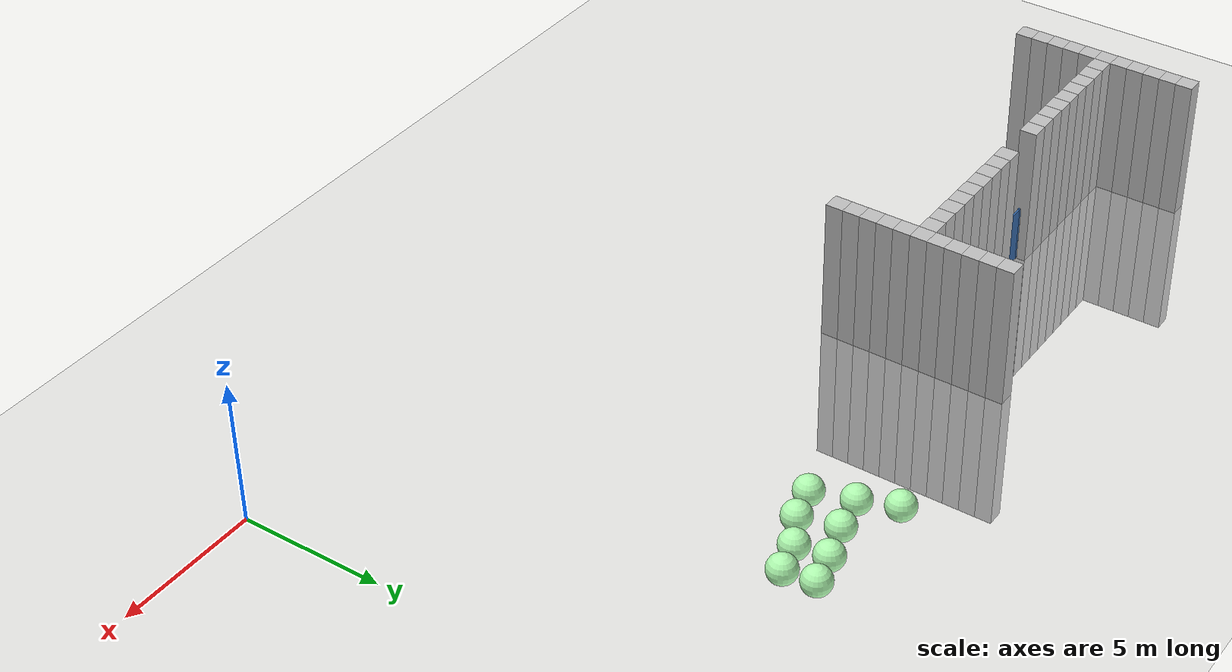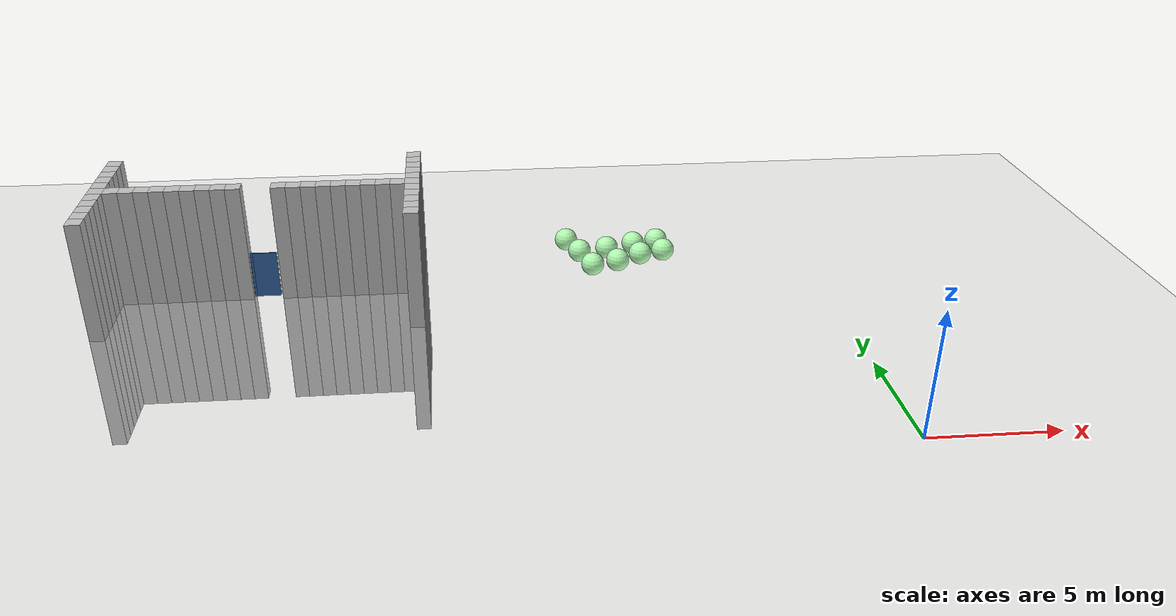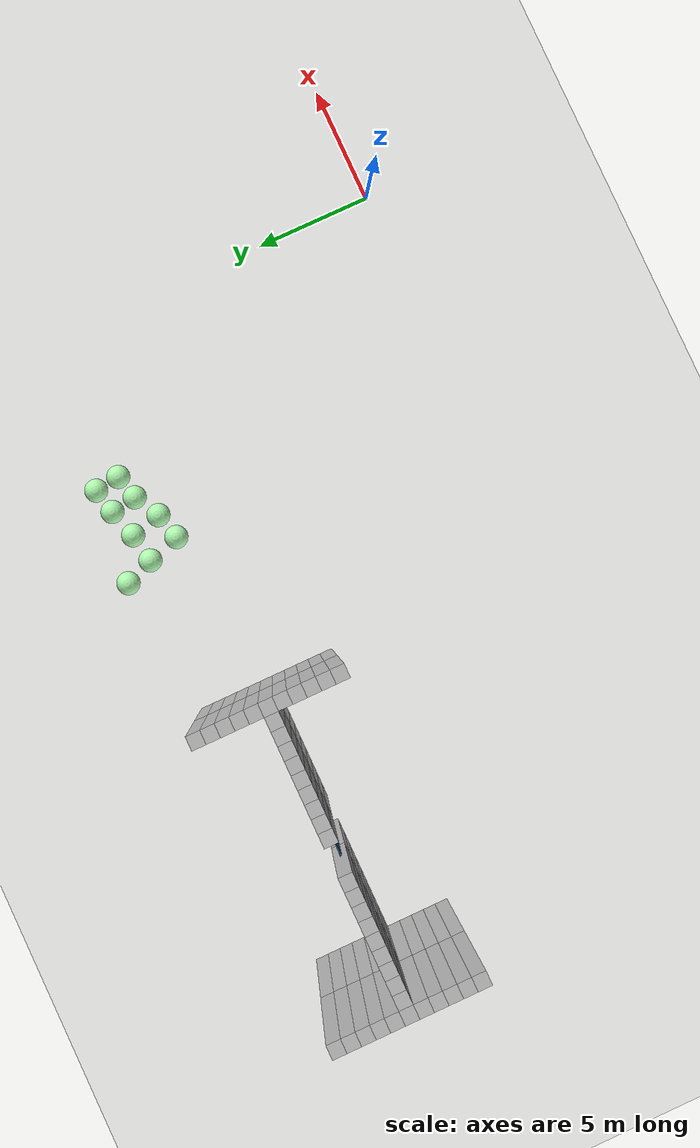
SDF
<sdf version="1.6">
 <world name="default">
  <model name="ground_plane">
   <static>1</static>
   <link name="link">
    <collision name="collision">
     <geometry><plane><normal>0 0 1</normal><size>100 100</size></plane></geometry>
     <surface><friction><ode><mu>100</mu><mu2>50</mu2></ode></friction></surface>
    </collision>
    <visual name="visual">
     <cast_shadows>0</cast_shadows>
     <geometry><plane><normal>0 0 1</normal><size>100 100</size></plane></geometry>
     <material>
      <script><uri>file://media/materials/scripts/gazebo.material</uri><name>Gazebo/Grey</name></script>
     </material>
    </visual>
   </link>
  </model>
  <model name="unit_cylinder_349">
   <static>1</static>
   <pose>-30 9.6 0 0 -0 0</pose>
   <link name="link">
    <inertial>
     <mass>1</mass>
     <inertia><ixx>0.145833</ixx><ixy>0</ixy><ixz>0</ixz><iyy>0.145833</iyy><iyz>0</iyz><izz>0.125</izz></inertia>
    </inertial>
    <collision name="collision"><geometry><box><size>0.6 0.6 10</size></box></geometry></collision>
    <visual name="visual">
     <geometry><box><size>0.6 0.6 10</size></box></geometry>
     <material><ambient>0.753 0.753 0.753 1</ambient><diffuse>0.753 0.753 0.753 1</diffuse></material>
     <material>
      <script><name>Gazebo/Grey</name><uri>file://media/materials/scripts/gazebo.material</uri></script>
     </material>
    </visual>
   </link>
  </model>
  <model name="unit_cylinder_350">
   <static>1</static>
   <pose>-30 10.2 0 0 -0 0</pose>
   <link name="link">
    <inertial>
     <mass>1</mass>
     <inertia><ixx>0.145833</ixx><ixy>0</ixy><ixz>0</ixz><iyy>0.145833</iyy><iyz>0</iyz><izz>0.125</izz></inertia>
    </inertial>
    <collision name="collision"><geometry><box><size>0.6 0.6 10</size></box></geometry></collision>
    <visual name="visual">
     <geometry><box><size>0.6 0.6 10</size></box></geometry>
     <material><ambient>0.753 0.753 0.753 1</ambient><diffuse>0.753 0.753 0.753 1</diffuse></material>
     <material>
      <script><name>Gazebo/Grey</name><uri>file://media/materials/scripts/gazebo.material</uri></script>
     </material>
    </visual>
   </link>
  </model>
  <model name="unit_cylinder_351">
   <static>1</static>
   <pose>-30 10.8 0 0 -0 0</pose>
   <link name="link">
    <inertial>
     <mass>1</mass>
     <inertia><ixx>0.145833</ixx><ixy>0</ixy><ixz>0</ixz><iyy>0.145833</iyy><iyz>0</iyz><izz>0.125</izz></inertia>
    </inertial>
    <collision name="collision"><geometry><box><size>0.6 0.6 10</size></box></geometry></collision>
    <visual name="visual">
     <geometry><box><size>0.6 0.6 10</size></box></geometry>
     <material><ambient>0.753 0.753 0.753 1</ambient><diffuse>0.753 0.753 0.753 1</diffuse></material>
     <material>
      <script><name>Gazebo/Grey</name><uri>file://media/materials/scripts/gazebo.material</uri></script>
     </material>
    </visual>
   </link>
  </model>
  <model name="unit_cylinder_352">
   <static>1</static>
   <pose>-30 11.4 0 0 -0 0</pose>
   <link name="link">
    <inertial>
     <mass>1</mass>
     <inertia><ixx>0.145833</ixx><ixy>0</ixy><ixz>0</ixz><iyy>0.145833</iyy><iyz>0</iyz><izz>0.125</izz></inertia>
    </inertial>
    <collision name="collision"><geometry><box><size>0.6 0.6 10</size></box></geometry></collision>
    <visual name="visual">
     <geometry><box><size>0.6 0.6 10</size></box></geometry>
     <material><ambient>0.753 0.753 0.753 1</ambient><diffuse>0.753 0.753 0.753 1</diffuse></material>
     <material>
      <script><name>Gazebo/Grey</name><uri>file://media/materials/scripts/gazebo.material</uri></script>
     </material>
    </visual>
   </link>
  </model>
  <model name="unit_cylinder_353">
   <static>1</static>
   <pose>-30 12 0 0 -0 0</pose>
   <link name="link">
    <inertial>
     <mass>1</mass>
     <inertia><ixx>0.145833</ixx><ixy>0</ixy><ixz>0</ixz><iyy>0.145833</iyy><iyz>0</iyz><izz>0.125</izz></inertia>
    </inertial>
    <collision name="collision"><geometry><box><size>0.6 0.6 10</size></box></geometry></collision>
    <visual name="visual">
     <geometry><box><size>0.6 0.6 10</size></box></geometry>
     <material><ambient>0.753 0.753 0.753 1</ambient><diffuse>0.753 0.753 0.753 1</diffuse></material>
     <material>
      <script><name>Gazebo/Grey</name><uri>file://media/materials/scripts/gazebo.material</uri></script>
     </material>
    </visual>
   </link>
  </model>
  <model name="unit_cylinder_354">
   <static>1</static>
   <pose>-30 12.6 0 0 -0 0</pose>
   <link name="link">
    <inertial>
     <mass>1</mass>
     <inertia><ixx>0.145833</ixx><ixy>0</ixy><ixz>0</ixz><iyy>0.145833</iyy><iyz>0</iyz><izz>0.125</izz></inertia>
    </inertial>
    <collision name="collision"><geometry><box><size>0.6 0.6 10</size></box></geometry></collision>
    <visual name="visual">
     <geometry><box><size>0.6 0.6 10</size></box></geometry>
     <material><ambient>0.753 0.753 0.753 1</ambient><diffuse>0.753 0.753 0.753 1</diffuse></material>
     <material>
      <script><name>Gazebo/Grey</name><uri>file://media/materials/scripts/gazebo.material</uri></script>
     </material>
    </visual>
   </link>
  </model>
  <model name="unit_cylinder_355">
   <static>1</static>
   <pose>-30 13.2 0 0 -0 0</pose>
   <link name="link">
    <inertial>
     <mass>1</mass>
     <inertia><ixx>0.145833</ixx><ixy>0</ixy><ixz>0</ixz><iyy>0.145833</iyy><iyz>0</iyz><izz>0.125</izz></inertia>
    </inertial>
    <collision name="collision"><geometry><box><size>0.6 0.6 10</size></box></geometry></collision>
    <visual name="visual">
     <geometry><box><size>0.6 0.6 10</size></box></geometry>
     <material><ambient>0.753 0.753 0.753 1</ambient><diffuse>0.753 0.753 0.753 1</diffuse></material>
     <material>
      <script><name>Gazebo/Grey</name><uri>file://media/materials/scripts/gazebo.material</uri></script>
     </material>
    </visual>
   </link>
  </model>
  <model name="unit_cylinder_356">
   <static>1</static>
   <pose>-30 13.8 0 0 -0 0</pose>
   <link name="link">
    <inertial>
     <mass>1</mass>
     <inertia><ixx>0.145833</ixx><ixy>0</ixy><ixz>0</ixz><iyy>0.145833</iyy><iyz>0</iyz><izz>0.125</izz></inertia>
    </inertial>
    <collision name="collision"><geometry><box><size>0.6 0.6 10</size></box></geometry></collision>
    <visual name="visual">
     <geometry><box><size>0.6 0.6 10</size></box></geometry>
     <material><ambient>0.753 0.753 0.753 1</ambient><diffuse>0.753 0.753 0.753 1</diffuse></material>
     <material>
      <script><name>Gazebo/Grey</name><uri>file://media/materials/scripts/gazebo.material</uri></script>
     </material>
    </visual>
   </link>
  </model>
  <model name="unit_cylinder_357">
   <static>1</static>
   <pose>-30 14.4 0 0 -0 0</pose>
   <link name="link">
    <inertial>
     <mass>1</mass>
     <inertia><ixx>0.145833</ixx><ixy>0</ixy><ixz>0</ixz><iyy>0.145833</iyy><iyz>0</iyz><izz>0.125</izz></inertia>
    </inertial>
    <collision name="collision"><geometry><box><size>0.6 0.6 10</size></box></geometry></collision>
    <visual name="visual">
     <geometry><box><size>0.6 0.6 10</size></box></geometry>
     <material><ambient>0.753 0.753 0.753 1</ambient><diffuse>0.753 0.753 0.753 1</diffuse></material>
     <material>
      <script><name>Gazebo/Grey</name><uri>file://media/materials/scripts/gazebo.material</uri></script>
     </material>
    </visual>
   </link>
  </model>
  <model name="unit_cylinder_358">
   <static>1</static>
   <pose>-30 15 0 0 -0 0</pose>
   <link name="link">
    <inertial>
     <mass>1</mass>
     <inertia><ixx>0.145833</ixx><ixy>0</ixy><ixz>0</ixz><iyy>0.145833</iyy><iyz>0</iyz><izz>0.125</izz></inertia>
    </inertial>
    <collision name="collision"><geometry><box><size>0.6 0.6 10</size></box></geometry></collision>
    <visual name="visual">
     <geometry><box><size>0.6 0.6 10</size></box></geometry>
     <material><ambient>0.753 0.753 0.753 1</ambient><diffuse>0.753 0.753 0.753 1</diffuse></material>
     <material>
      <script><name>Gazebo/Grey</name><uri>file://media/materials/scripts/gazebo.material</uri></script>
     </material>
    </visual>
   </link>
  </model>
  <model name="unit_cylinder_359">
   <static>1</static>
   <pose>-30 15.6 0 0 -0 0</pose>
   <link name="link">
    <inertial>
     <mass>1</mass>
     <inertia><ixx>0.145833</ixx><ixy>0</ixy><ixz>0</ixz><iyy>0.145833</iyy><iyz>0</iyz><izz>0.125</izz></inertia>
    </inertial>
    <collision name="collision"><geometry><box><size>0.6 0.6 10</size></box></geometry></collision>
    <visual name="visual">
     <geometry><box><size>0.6 0.6 10</size></box></geometry>
     <material><ambient>0.753 0.753 0.753 1</ambient><diffuse>0.753 0.753 0.753 1</diffuse></material>
     <material>
      <script><name>Gazebo/Grey</name><uri>file://media/materials/scripts/gazebo.material</uri></script>
     </material>
    </visual>
   </link>
  </model>
  <model name="unit_cylinder_398">
   <static>1</static>
   <pose>-29.4 12.6 0 0 -0 0</pose>
   <link name="link">
    <inertial>
     <mass>1</mass>
     <inertia><ixx>0.145833</ixx><ixy>0</ixy><ixz>0</ixz><iyy>0.145833</iyy><iyz>0</iyz><izz>0.125</izz></inertia>
    </inertial>
    <collision name="collision"><geometry><box><size>0.6 0.6 10</size></box></geometry></collision>
    <visual name="visual">
     <geometry><box><size>0.6 0.6 10</size></box></geometry>
     <material><ambient>0.753 0.753 0.753 1</ambient><diffuse>0.753 0.753 0.753 1</diffuse></material>
     <material>
      <script><name>Gazebo/Grey</name><uri>file://media/materials/scripts/gazebo.material</uri></script>
     </material>
    </visual>
   </link>
  </model>
  <model name="unit_cylinder_402">
   <static>1</static>
   <pose>-28.8 12.6 0 0 -0 0</pose>
   <link name="link">
    <inertial>
     <mass>1</mass>
     <inertia><ixx>0.145833</ixx><ixy>0</ixy><ixz>0</ixz><iyy>0.145833</iyy><iyz>0</iyz><izz>0.125</izz></inertia>
    </inertial>
    <collision name="collision"><geometry><box><size>0.6 0.6 10</size></box></geometry></collision>
    <visual name="visual">
     <geometry><box><size>0.6 0.6 10</size></box></geometry>
     <material><ambient>0.753 0.753 0.753 1</ambient><diffuse>0.753 0.753 0.753 1</diffuse></material>
     <material>
      <script><name>Gazebo/Grey</name><uri>file://media/materials/scripts/gazebo.material</uri></script>
     </material>
    </visual>
   </link>
  </model>
  <model name="unit_cylinder_406">
   <static>1</static>
   <pose>-28.2 12.6 0 0 -0 0</pose>
   <link name="link">
    <inertial>
     <mass>1</mass>
     <inertia><ixx>0.145833</ixx><ixy>0</ixy><ixz>0</ixz><iyy>0.145833</iyy><iyz>0</iyz><izz>0.125</izz></inertia>
    </inertial>
    <collision name="collision"><geometry><box><size>0.6 0.6 10</size></box></geometry></collision>
    <visual name="visual">
     <geometry><box><size>0.6 0.6 10</size></box></geometry>
     <material><ambient>0.753 0.753 0.753 1</ambient><diffuse>0.753 0.753 0.753 1</diffuse></material>
     <material>
      <script><name>Gazebo/Grey</name><uri>file://media/materials/scripts/gazebo.material</uri></script>
     </material>
    </visual>
   </link>
  </model>
  <model name="unit_cylinder_410">
   <static>1</static>
   <pose>-27.6 12.6 0 0 -0 0</pose>
   <link name="link">
    <inertial>
     <mass>1</mass>
     <inertia><ixx>0.145833</ixx><ixy>0</ixy><ixz>0</ixz><iyy>0.145833</iyy><iyz>0</iyz><izz>0.125</izz></inertia>
    </inertial>
    <collision name="collision"><geometry><box><size>0.6 0.6 10</size></box></geometry></collision>
    <visual name="visual">
     <geometry><box><size>0.6 0.6 10</size></box></geometry>
     <material><ambient>0.753 0.753 0.753 1</ambient><diffuse>0.753 0.753 0.753 1</diffuse></material>
     <material>
      <script><name>Gazebo/Grey</name><uri>file://media/materials/scripts/gazebo.material</uri></script>
     </material>
    </visual>
   </link>
  </model>
  <model name="unit_cylinder_414">
   <static>1</static>
   <pose>-27 12.6 0 0 -0 0</pose>
   <link name="link">
    <inertial>
     <mass>1</mass>
     <inertia><ixx>0.145833</ixx><ixy>0</ixy><ixz>0</ixz><iyy>0.145833</iyy><iyz>0</iyz><izz>0.125</izz></inertia>
    </inertial>
    <collision name="collision"><geometry><box><size>0.6 0.6 10</size></box></geometry></collision>
    <visual name="visual">
     <geometry><box><size>0.6 0.6 10</size></box></geometry>
     <material><ambient>0.753 0.753 0.753 1</ambient><diffuse>0.753 0.753 0.753 1</diffuse></material>
     <material>
      <script><name>Gazebo/Grey</name><uri>file://media/materials/scripts/gazebo.material</uri></script>
     </material>
    </visual>
   </link>
  </model>
  <model name="unit_cylinder_418">
   <static>1</static>
   <pose>-26.4 12.6 0 0 -0 0</pose>
   <link name="link">
    <inertial>
     <mass>1</mass>
     <inertia><ixx>0.145833</ixx><ixy>0</ixy><ixz>0</ixz><iyy>0.145833</iyy><iyz>0</iyz><izz>0.125</izz></inertia>
    </inertial>
    <collision name="collision"><geometry><box><size>0.6 0.6 10</size></box></geometry></collision>
    <visual name="visual">
     <geometry><box><size>0.6 0.6 10</size></box></geometry>
     <material><ambient>0.753 0.753 0.753 1</ambient><diffuse>0.753 0.753 0.753 1</diffuse></material>
     <material>
      <script><name>Gazebo/Grey</name><uri>file://media/materials/scripts/gazebo.material</uri></script>
     </material>
    </visual>
   </link>
  </model>
  <model name="unit_cylinder_422">
   <static>1</static>
   <pose>-25.8 12.6 0 0 -0 0</pose>
   <link name="link">
    <inertial>
     <mass>1</mass>
     <inertia><ixx>0.145833</ixx><ixy>0</ixy><ixz>0</ixz><iyy>0.145833</iyy><iyz>0</iyz><izz>0.125</izz></inertia>
    </inertial>
    <collision name="collision"><geometry><box><size>0.6 0.6 10</size></box></geometry></collision>
    <visual name="visual">
     <geometry><box><size>0.6 0.6 10</size></box></geometry>
     <material><ambient>0.753 0.753 0.753 1</ambient><diffuse>0.753 0.753 0.753 1</diffuse></material>
     <material>
      <script><name>Gazebo/Grey</name><uri>file://media/materials/scripts/gazebo.material</uri></script>
     </material>
    </visual>
   </link>
  </model>
  <model name="unit_cylinder_426">
   <static>1</static>
   <pose>-25.2 12.6 0 0 -0 0</pose>
   <link name="link">
    <inertial>
     <mass>1</mass>
     <inertia><ixx>0.145833</ixx><ixy>0</ixy><ixz>0</ixz><iyy>0.145833</iyy><iyz>0</iyz><izz>0.125</izz></inertia>
    </inertial>
    <collision name="collision"><geometry><box><size>0.6 0.6 10</size></box></geometry></collision>
    <visual name="visual">
     <geometry><box><size>0.6 0.6 10</size></box></geometry>
     <material><ambient>0.753 0.753 0.753 1</ambient><diffuse>0.753 0.753 0.753 1</diffuse></material>
     <material>
      <script><name>Gazebo/Grey</name><uri>file://media/materials/scripts/gazebo.material</uri></script>
     </material>
    </visual>
   </link>
  </model>
  <model name="unit_cylinder_430">
   <static>1</static>
   <pose>-24.6 12.6 0 0 -0 0</pose>
   <link name="link">
    <inertial>
     <mass>1</mass>
     <inertia><ixx>0.145833</ixx><ixy>0</ixy><ixz>0</ixz><iyy>0.145833</iyy><iyz>0</iyz><izz>0.125</izz></inertia>
    </inertial>
    <collision name="collision"><geometry><box><size>0.6 0.6 10</size></box></geometry></collision>
    <visual name="visual">
     <geometry><box><size>0.6 0.6 10</size></box></geometry>
     <material><ambient>0.753 0.753 0.753 1</ambient><diffuse>0.753 0.753 0.753 1</diffuse></material>
     <material>
      <script><name>Gazebo/Grey</name><uri>file://media/materials/scripts/gazebo.material</uri></script>
     </material>
    </visual>
   </link>
  </model>
  <model name="unit_cylinder_442">
   <static>1</static>
   <pose>-22.8 12.6 0 0 -0 0</pose>
   <link name="link">
    <inertial>
     <mass>1</mass>
     <inertia><ixx>0.145833</ixx><ixy>0</ixy><ixz>0</ixz><iyy>0.145833</iyy><iyz>0</iyz><izz>0.125</izz></inertia>
    </inertial>
    <collision name="collision"><geometry><box><size>0.6 0.6 10</size></box></geometry></collision>
    <visual name="visual">
     <geometry><box><size>0.6 0.6 10</size></box></geometry>
     <material><ambient>0.753 0.753 0.753 1</ambient><diffuse>0.753 0.753 0.753 1</diffuse></material>
     <material>
      <script><name>Gazebo/Grey</name><uri>file://media/materials/scripts/gazebo.material</uri></script>
     </material>
    </visual>
   </link>
  </model>
  <model name="unit_cylinder_446">
   <static>1</static>
   <pose>-22.2 12.6 0 0 -0 0</pose>
   <link name="link">
    <inertial>
     <mass>1</mass>
     <inertia><ixx>0.145833</ixx><ixy>0</ixy><ixz>0</ixz><iyy>0.145833</iyy><iyz>0</iyz><izz>0.125</izz></inertia>
    </inertial>
    <collision name="collision"><geometry><box><size>0.6 0.6 10</size></box></geometry></collision>
    <visual name="visual">
     <geometry><box><size>0.6 0.6 10</size></box></geometry>
     <material><ambient>0.753 0.753 0.753 1</ambient><diffuse>0.753 0.753 0.753 1</diffuse></material>
     <material>
      <script><name>Gazebo/Grey</name><uri>file://media/materials/scripts/gazebo.material</uri></script>
     </material>
    </visual>
   </link>
  </model>
  <model name="unit_cylinder_450">
   <static>1</static>
   <pose>-21.6 12.6 0 0 -0 0</pose>
   <link name="link">
    <inertial>
     <mass>1</mass>
     <inertia><ixx>0.145833</ixx><ixy>0</ixy><ixz>0</ixz><iyy>0.145833</iyy><iyz>0</iyz><izz>0.125</izz></inertia>
    </inertial>
    <collision name="collision"><geometry><box><size>0.6 0.6 10</size></box></geometry></collision>
    <visual name="visual">
     <geometry><box><size>0.6 0.6 10</size></box></geometry>
     <material><ambient>0.753 0.753 0.753 1</ambient><diffuse>0.753 0.753 0.753 1</diffuse></material>
     <material>
      <script><name>Gazebo/Grey</name><uri>file://media/materials/scripts/gazebo.material</uri></script>
     </material>
    </visual>
   </link>
  </model>
  <model name="unit_cylinder_454">
   <static>1</static>
   <pose>-21 12.6 0 0 -0 0</pose>
   <link name="link">
    <inertial>
     <mass>1</mass>
     <inertia><ixx>0.145833</ixx><ixy>0</ixy><ixz>0</ixz><iyy>0.145833</iyy><iyz>0</iyz><izz>0.125</izz></inertia>
    </inertial>
    <collision name="collision"><geometry><box><size>0.6 0.6 10</size></box></geometry></collision>
    <visual name="visual">
     <geometry><box><size>0.6 0.6 10</size></box></geometry>
     <material><ambient>0.753 0.753 0.753 1</ambient><diffuse>0.753 0.753 0.753 1</diffuse></material>
     <material>
      <script><name>Gazebo/Grey</name><uri>file://media/materials/scripts/gazebo.material</uri></script>
     </material>
    </visual>
   </link>
  </model>
  <model name="unit_cylinder_458">
   <static>1</static>
   <pose>-20.4 12.6 0 0 -0 0</pose>
   <link name="link">
    <inertial>
     <mass>1</mass>
     <inertia><ixx>0.145833</ixx><ixy>0</ixy><ixz>0</ixz><iyy>0.145833</iyy><iyz>0</iyz><izz>0.125</izz></inertia>
    </inertial>
    <collision name="collision"><geometry><box><size>0.6 0.6 10</size></box></geometry></collision>
    <visual name="visual">
     <geometry><box><size>0.6 0.6 10</size></box></geometry>
     <material><ambient>0.753 0.753 0.753 1</ambient><diffuse>0.753 0.753 0.753 1</diffuse></material>
     <material>
      <script><name>Gazebo/Grey</name><uri>file://media/materials/scripts/gazebo.material</uri></script>
     </material>
    </visual>
   </link>
  </model>
  <model name="unit_cylinder_462">
   <static>1</static>
   <pose>-19.8 12.6 0 0 -0 0</pose>
   <link name="link">
    <inertial>
     <mass>1</mass>
     <inertia><ixx>0.145833</ixx><ixy>0</ixy><ixz>0</ixz><iyy>0.145833</iyy><iyz>0</iyz><izz>0.125</izz></inertia>
    </inertial>
    <collision name="collision"><geometry><box><size>0.6 0.6 10</size></box></geometry></collision>
    <visual name="visual">
     <geometry><box><size>0.6 0.6 10</size></box></geometry>
     <material><ambient>0.753 0.753 0.753 1</ambient><diffuse>0.753 0.753 0.753 1</diffuse></material>
     <material>
      <script><name>Gazebo/Grey</name><uri>file://media/materials/scripts/gazebo.material</uri></script>
     </material>
    </visual>
   </link>
  </model>
  <model name="unit_cylinder_466">
   <static>1</static>
   <pose>-19.2 12.6 0 0 -0 0</pose>
   <link name="link">
    <inertial>
     <mass>1</mass>
     <inertia><ixx>0.145833</ixx><ixy>0</ixy><ixz>0</ixz><iyy>0.145833</iyy><iyz>0</iyz><izz>0.125</izz></inertia>
    </inertial>
    <collision name="collision"><geometry><box><size>0.6 0.6 10</size></box></geometry></collision>
    <visual name="visual">
     <geometry><box><size>0.6 0.6 10</size></box></geometry>
     <material><ambient>0.753 0.753 0.753 1</ambient><diffuse>0.753 0.753 0.753 1</diffuse></material>
     <material>
      <script><name>Gazebo/Grey</name><uri>file://media/materials/scripts/gazebo.material</uri></script>
     </material>
    </visual>
   </link>
  </model>
  <model name="unit_cylinder_470">
   <static>1</static>
   <pose>-18.6 12.6 0 0 -0 0</pose>
   <link name="link">
    <inertial>
     <mass>1</mass>
     <inertia><ixx>0.145833</ixx><ixy>0</ixy><ixz>0</ixz><iyy>0.145833</iyy><iyz>0</iyz><izz>0.125</izz></inertia>
    </inertial>
    <collision name="collision"><geometry><box><size>0.6 0.6 10</size></box></geometry></collision>
    <visual name="visual">
     <geometry><box><size>0.6 0.6 10</size></box></geometry>
     <material><ambient>0.753 0.753 0.753 1</ambient><diffuse>0.753 0.753 0.753 1</diffuse></material>
     <material>
      <script><name>Gazebo/Grey</name><uri>file://media/materials/scripts/gazebo.material</uri></script>
     </material>
    </visual>
   </link>
  </model>
  <model name="unit_cylinder_474">
   <static>1</static>
   <pose>-18 12.6 0 0 -0 0</pose>
   <link name="link">
    <inertial>
     <mass>1</mass>
     <inertia><ixx>0.145833</ixx><ixy>0</ixy><ixz>0</ixz><iyy>0.145833</iyy><iyz>0</iyz><izz>0.125</izz></inertia>
    </inertial>
    <collision name="collision"><geometry><box><size>0.6 0.6 10</size></box></geometry></collision>
    <visual name="visual">
     <geometry><box><size>0.6 0.6 10</size></box></geometry>
     <material><ambient>0.753 0.753 0.753 1</ambient><diffuse>0.753 0.753 0.753 1</diffuse></material>
     <material>
      <script><name>Gazebo/Grey</name><uri>file://media/materials/scripts/gazebo.material</uri></script>
     </material>
    </visual>
   </link>
  </model>
  <model name="unit_cylinder_493">
   <static>1</static>
   <pose>-17.4 9.6 0 0 -0 0</pose>
   <link name="link">
    <inertial>
     <mass>1</mass>
     <inertia><ixx>0.145833</ixx><ixy>0</ixy><ixz>0</ixz><iyy>0.145833</iyy><iyz>0</iyz><izz>0.125</izz></inertia>
    </inertial>
    <collision name="collision"><geometry><box><size>0.6 0.6 10</size></box></geometry></collision>
    <visual name="visual">
     <geometry><box><size>0.6 0.6 10</size></box></geometry>
     <material><ambient>0.753 0.753 0.753 1</ambient><diffuse>0.753 0.753 0.753 1</diffuse></material>
     <material>
      <script><name>Gazebo/Grey</name><uri>file://media/materials/scripts/gazebo.material</uri></script>
     </material>
    </visual>
   </link>
  </model>
  <model name="unit_cylinder_494">
   <static>1</static>
   <pose>-17.4 10.2 0 0 -0 0</pose>
   <link name="link">
    <inertial>
     <mass>1</mass>
     <inertia><ixx>0.145833</ixx><ixy>0</ixy><ixz>0</ixz><iyy>0.145833</iyy><iyz>0</iyz><izz>0.125</izz></inertia>
    </inertial>
    <collision name="collision"><geometry><box><size>0.6 0.6 10</size></box></geometry></collision>
    <visual name="visual">
     <geometry><box><size>0.6 0.6 10</size></box></geometry>
     <material><ambient>0.753 0.753 0.753 1</ambient><diffuse>0.753 0.753 0.753 1</diffuse></material>
     <material>
      <script><name>Gazebo/Grey</name><uri>file://media/materials/scripts/gazebo.material</uri></script>
     </material>
    </visual>
   </link>
  </model>
  <model name="unit_cylinder_495">
   <static>1</static>
   <pose>-17.4 10.8 0 0 -0 0</pose>
   <link name="link">
    <inertial>
     <mass>1</mass>
     <inertia><ixx>0.145833</ixx><ixy>0</ixy><ixz>0</ixz><iyy>0.145833</iyy><iyz>0</iyz><izz>0.125</izz></inertia>
    </inertial>
    <collision name="collision"><geometry><box><size>0.6 0.6 10</size></box></geometry></collision>
    <visual name="visual">
     <geometry><box><size>0.6 0.6 10</size></box></geometry>
     <material><ambient>0.753 0.753 0.753 1</ambient><diffuse>0.753 0.753 0.753 1</diffuse></material>
     <material>
      <script><name>Gazebo/Grey</name><uri>file://media/materials/scripts/gazebo.material</uri></script>
     </material>
    </visual>
   </link>
  </model>
  <model name="unit_cylinder_496">
   <static>1</static>
   <pose>-17.4 11.4 0 0 -0 0</pose>
   <link name="link">
    <inertial>
     <mass>1</mass>
     <inertia><ixx>0.145833</ixx><ixy>0</ixy><ixz>0</ixz><iyy>0.145833</iyy><iyz>0</iyz><izz>0.125</izz></inertia>
    </inertial>
    <collision name="collision"><geometry><box><size>0.6 0.6 10</size></box></geometry></collision>
    <visual name="visual">
     <geometry><box><size>0.6 0.6 10</size></box></geometry>
     <material><ambient>0.753 0.753 0.753 1</ambient><diffuse>0.753 0.753 0.753 1</diffuse></material>
     <material>
      <script><name>Gazebo/Grey</name><uri>file://media/materials/scripts/gazebo.material</uri></script>
     </material>
    </visual>
   </link>
  </model>
  <model name="unit_cylinder_497">
   <static>1</static>
   <pose>-17.4 12 0 0 -0 0</pose>
   <link name="link">
    <inertial>
     <mass>1</mass>
     <inertia><ixx>0.145833</ixx><ixy>0</ixy><ixz>0</ixz><iyy>0.145833</iyy><iyz>0</iyz><izz>0.125</izz></inertia>
    </inertial>
    <collision name="collision"><geometry><box><size>0.6 0.6 10</size></box></geometry></collision>
    <visual name="visual">
     <geometry><box><size>0.6 0.6 10</size></box></geometry>
     <material><ambient>0.753 0.753 0.753 1</ambient><diffuse>0.753 0.753 0.753 1</diffuse></material>
     <material>
      <script><name>Gazebo/Grey</name><uri>file://media/materials/scripts/gazebo.material</uri></script>
     </material>
    </visual>
   </link>
  </model>
  <model name="unit_cylinder_498">
   <static>1</static>
   <pose>-17.4 12.6 0 0 -0 0</pose>
   <link name="link">
    <inertial>
     <mass>1</mass>
     <inertia><ixx>0.145833</ixx><ixy>0</ixy><ixz>0</ixz><iyy>0.145833</iyy><iyz>0</iyz><izz>0.125</izz></inertia>
    </inertial>
    <collision name="collision"><geometry><box><size>0.6 0.6 10</size></box></geometry></collision>
    <visual name="visual">
     <geometry><box><size>0.6 0.6 10</size></box></geometry>
     <material><ambient>0.753 0.753 0.753 1</ambient><diffuse>0.753 0.753 0.753 1</diffuse></material>
     <material>
      <script><name>Gazebo/Grey</name><uri>file://media/materials/scripts/gazebo.material</uri></script>
     </material>
    </visual>
   </link>
  </model>
  <model name="unit_cylinder_499">
   <static>1</static>
   <pose>-17.4 13.2 0 0 -0 0</pose>
   <link name="link">
    <inertial>
     <mass>1</mass>
     <inertia><ixx>0.145833</ixx><ixy>0</ixy><ixz>0</ixz><iyy>0.145833</iyy><iyz>0</iyz><izz>0.125</izz></inertia>
    </inertial>
    <collision name="collision"><geometry><box><size>0.6 0.6 10</size></box></geometry></collision>
    <visual name="visual">
     <geometry><box><size>0.6 0.6 10</size></box></geometry>
     <material><ambient>0.753 0.753 0.753 1</ambient><diffuse>0.753 0.753 0.753 1</diffuse></material>
     <material>
      <script><name>Gazebo/Grey</name><uri>file://media/materials/scripts/gazebo.material</uri></script>
     </material>
    </visual>
   </link>
  </model>
  <model name="unit_cylinder_500">
   <static>1</static>
   <pose>-17.4 13.8 0 0 -0 0</pose>
   <link name="link">
    <inertial>
     <mass>1</mass>
     <inertia><ixx>0.145833</ixx><ixy>0</ixy><ixz>0</ixz><iyy>0.145833</iyy><iyz>0</iyz><izz>0.125</izz></inertia>
    </inertial>
    <collision name="collision"><geometry><box><size>0.6 0.6 10</size></box></geometry></collision>
    <visual name="visual">
     <geometry><box><size>0.6 0.6 10</size></box></geometry>
     <material><ambient>0.753 0.753 0.753 1</ambient><diffuse>0.753 0.753 0.753 1</diffuse></material>
     <material>
      <script><name>Gazebo/Grey</name><uri>file://media/materials/scripts/gazebo.material</uri></script>
     </material>
    </visual>
   </link>
  </model>
  <model name="unit_cylinder_501">
   <static>1</static>
   <pose>-17.4 14.4 0 0 -0 0</pose>
   <link name="link">
    <inertial>
     <mass>1</mass>
     <inertia><ixx>0.145833</ixx><ixy>0</ixy><ixz>0</ixz><iyy>0.145833</iyy><iyz>0</iyz><izz>0.125</izz></inertia>
    </inertial>
    <collision name="collision"><geometry><box><size>0.6 0.6 10</size></box></geometry></collision>
    <visual name="visual">
     <geometry><box><size>0.6 0.6 10</size></box></geometry>
     <material><ambient>0.753 0.753 0.753 1</ambient><diffuse>0.753 0.753 0.753 1</diffuse></material>
     <material>
      <script><name>Gazebo/Grey</name><uri>file://media/materials/scripts/gazebo.material</uri></script>
     </material>
    </visual>
   </link>
  </model>
  <model name="unit_cylinder_502">
   <static>1</static>
   <pose>-17.4 15 0 0 -0 0</pose>
   <link name="link">
    <inertial>
     <mass>1</mass>
     <inertia><ixx>0.145833</ixx><ixy>0</ixy><ixz>0</ixz><iyy>0.145833</iyy><iyz>0</iyz><izz>0.125</izz></inertia>
    </inertial>
    <collision name="collision"><geometry><box><size>0.6 0.6 10</size></box></geometry></collision>
    <visual name="visual">
     <geometry><box><size>0.6 0.6 10</size></box></geometry>
     <material><ambient>0.753 0.753 0.753 1</ambient><diffuse>0.753 0.753 0.753 1</diffuse></material>
     <material>
      <script><name>Gazebo/Grey</name><uri>file://media/materials/scripts/gazebo.material</uri></script>
     </material>
    </visual>
   </link>
  </model>
  <model name="unit_cylinder_503">
   <static>1</static>
   <pose>-17.4 15.6 0 0 -0 0</pose>
   <link name="link">
    <inertial>
     <mass>1</mass>
     <inertia><ixx>0.145833</ixx><ixy>0</ixy><ixz>0</ixz><iyy>0.145833</iyy><iyz>0</iyz><izz>0.125</izz></inertia>
    </inertial>
    <collision name="collision"><geometry><box><size>0.6 0.6 10</size></box></geometry></collision>
    <visual name="visual">
     <geometry><box><size>0.6 0.6 10</size></box></geometry>
     <material><ambient>0.753 0.753 0.753 1</ambient><diffuse>0.753 0.753 0.753 1</diffuse></material>
     <material>
      <script><name>Gazebo/Grey</name><uri>file://media/materials/scripts/gazebo.material</uri></script>
     </material>
    </visual>
   </link>
  </model>
  <model name="hinge_door_0">
   <link name="link_0">
    <inertial>
     <mass>0.11</mass>
     <inertia>
      <ixx>0.0366896</ixx>
      <ixy>0</ixy>
      <ixz>0</ixz>
      <iyy>0.0477583</iyy>
      <iyz>0</iyz>
      <izz>0.0111146</izz>
     </inertia>
    </inertial>
    <pose>0.25 0 1 0 -0 0</pose>
    <visual name="visual">
     <geometry><box><size>1.1 0.05 2</size></box></geometry>
     <material>
      <lighting>1</lighting>
      <script><uri>file://media/materials/scripts/gazebo.material</uri><name>Gazebo/Grey</name></script>
      <shader type="pixel"><normal_map>__default__</normal_map></shader>
      <ambient>0.204 0.396 0.643 1</ambient>
      <diffuse>0.7 0.7 0.7 1</diffuse>
      <specular>0.01 0.01 0.01 1</specular>
      <emissive>0 0 0 1</emissive>
     </material>
    </visual>
    <collision name="collision">
     <geometry><box><size>1.1 0.05 2</size></box></geometry>
     <surface>
      <friction>
       <ode><mu>1</mu><mu2>1</mu2><fdir1>0 0 0</fdir1><slip1>0</slip1><slip2>0</slip2></ode>
       <torsional>
        <coefficient>1</coefficient>
        <patch_radius>0</patch_radius>
        <surface_radius>0</surface_radius>
        <use_patch_radius>1</use_patch_radius>
        <ode><slip>0</slip></ode>
       </torsional>
      </friction>
      <bounce><restitution_coefficient>0</restitution_coefficient><threshold>1e+06</threshold></bounce>
      <contact>
       <collide_without_contact>0</collide_without_contact>
       <collide_without_contact_bitmask>1</collide_without_contact_bitmask>
       <collide_bitmask>1</collide_bitmask>
       <ode>
        <soft_cfm>0</soft_cfm>
        <soft_erp>0.2</soft_erp>
        <kp>1e+13</kp>
        <kd>1</kd>
        <max_vel>0.01</max_vel>
        <min_depth>0</min_depth>
       </ode>
       <bullet>
        <split_impulse>1</split_impulse>
        <split_impulse_penetration_threshold>-0.01</split_impulse_penetration_threshold>
        <soft_cfm>0</soft_cfm>
        <soft_erp>0.2</soft_erp>
        <kp>1e+13</kp>
        <kd>1</kd>
       </bullet>
      </contact>
     </surface>
    </collision>
   </link>
   <link name="link_1">
    <inertial>
     <mass>10.9956</mass>
     <inertia>
      <ixx>3.67206</ixx>
      <ixy>0</ixy>
      <ixz>0</ixz>
      <iyy>3.67206</iyy>
      <iyz>0</iyz>
      <izz>0.0137445</izz>
     </inertia>
    </inertial>
    <pose>-0.25 0 1 0 -0 0</pose>
    <visual name="visual">
     <geometry><cylinder><radius>0.05</radius><length>2</length></cylinder></geometry>
     <material>
      <lighting>1</lighting>
      <script><uri>file://media/materials/scripts/gazebo.material</uri><name>Gazebo/Grey</name></script>
      <shader type="pixel"><normal_map>__default__</normal_map></shader>
      <ambient>0.204 0.396 0.643 1</ambient>
      <diffuse>0.7 0.7 0.7 1</diffuse>
      <specular>0.01 0.01 0.01 1</specular>
      <emissive>0 0 0 1</emissive>
     </material>
    </visual>
    <collision name="collision">
     <geometry><cylinder><radius>0.05</radius><length>2</length></cylinder></geometry>
     <surface>
      <friction>
       <ode><mu>1</mu><mu2>1</mu2><fdir1>0 0 0</fdir1><slip1>0</slip1><slip2>0</slip2></ode>
       <torsional>
        <coefficient>1</coefficient>
        <patch_radius>0</patch_radius>
        <surface_radius>0</surface_radius>
        <use_patch_radius>1</use_patch_radius>
        <ode><slip>0</slip></ode>
       </torsional>
      </friction>
      <bounce><restitution_coefficient>0</restitution_coefficient><threshold>1e+06</threshold></bounce>
      <contact>
       <collide_without_contact>0</collide_without_contact>
       <collide_without_contact_bitmask>1</collide_without_contact_bitmask>
       <collide_bitmask>1</collide_bitmask>
       <ode>
        <soft_cfm>0</soft_cfm>
        <soft_erp>0.2</soft_erp>
        <kp>1e+13</kp>
        <kd>1</kd>
        <max_vel>0.01</max_vel>
        <min_depth>0</min_depth>
       </ode>
       <bullet>
        <split_impulse>1</split_impulse>
        <split_impulse_penetration_threshold>-0.01</split_impulse_penetration_threshold>
        <soft_cfm>0</soft_cfm>
        <soft_erp>0.2</soft_erp>
        <kp>1e+13</kp>
        <kd>1</kd>
       </bullet>
      </contact>
     </surface>
    </collision>
   </link>
   <joint name="hinge" type="revolute">
    <parent>link_1</parent>
    <child>link_0</child>
    <pose>-0.5 0 0 0 -0 0</pose>
    <axis>
     <xyz>0 0 1</xyz>
     <use_parent_model_frame>0</use_parent_model_frame>
     <limit>
      <lower>-1.79769e+308</lower>
      <upper>1.79769e+308</upper>
      <effort>-1</effort>
      <velocity>-1</velocity>
     </limit>
     <dynamics>
      <spring_reference>0</spring_reference>
      <spring_stiffness>0</spring_stiffness>
      <damping>0</damping>
      <friction>0</friction>
     </dynamics>
    </axis>
    <physics>
     <ode><limit><cfm>0</cfm><erp>0.2</erp></limit><suspension><cfm>0</cfm><erp>0.2</erp></suspension></ode>
    </physics>
   </joint>
   <joint name="floor_link" type="fixed">
    <child>link_1</child>
    <parent>world</parent>
    <axis>
     <xyz>0 0 1</xyz>
     <dynamics><spring_reference>0</spring_reference><spring_stiffness>0</spring_stiffness></dynamics>
     <use_parent_model_frame>0</use_parent_model_frame>
     <limit><lower>-1e+16</lower><upper>1e+16</upper></limit>
    </axis>
   </joint>
   <pose>-23.9949 12.5707 0 0 0 -0.000587</pose>
  </model>
  <model name="bouncy_ball_clone_5">
   <link name="link_0">
    <inertial>
     <mass>0.1</mass>
     <inertia><ixx>1</ixx><ixy>0</ixy><ixz>0</ixz><iyy>1</iyy><iyz>0</iyz><izz>1</izz></inertia>
    </inertial>
    <visual name="visual">
     <geometry><sphere><radius>0.5</radius></sphere></geometry>
     <material>
      <lighting>1</lighting>
      <script><uri>file://media/materials/scripts/gazebo.material</uri><name>Gazebo/Grey</name></script>
      <shader type="pixel"><normal_map>__default__</normal_map></shader>
      <ambient>0 1 0 0</ambient>
      <diffuse>0.7 1 0.7 1</diffuse>
      <specular>0.01 0.01 0.01 1</specular>
      <emissive>0 0 0 1</emissive>
     </material>
    </visual>
    <collision name="collision">
     <geometry><sphere><radius>0.5</radius></sphere></geometry>
     <surface>
      <friction><ode><mu>0</mu><mu2>0</mu2></ode></friction>
      <contact>
       <ode><kp>500000</kp><kd>0</kd><max_vel>1e+26</max_vel><min_depth>0</min_depth></ode>
       <bullet>
        <kp>500000</kp>
        <kd>0</kd>
        <split_impulse>1</split_impulse>
        <split_impulse_penetration_threshold>-0.01</split_impulse_penetration_threshold>
       </bullet>
      </contact>
     </surface>
    </collision>
   </link>
   <static>0</static>
   <pose>-10.7099 15.9483 0.499998 0 -0 0</pose>
  </model>
  <model name="bouncy_ball_clone_6">
   <link name="link_0">
    <inertial>
     <mass>0.1</mass>
     <inertia><ixx>1</ixx><ixy>0</ixy><ixz>0</ixz><iyy>1</iyy><iyz>0</iyz><izz>1</izz></inertia>
    </inertial>
    <visual name="visual">
     <geometry><sphere><radius>0.5</radius></sphere></geometry>
     <material>
      <lighting>1</lighting>
      <script><uri>file://media/materials/scripts/gazebo.material</uri><name>Gazebo/Grey</name></script>
      <shader type="pixel"><normal_map>__default__</normal_map></shader>
      <ambient>0 1 0 0</ambient>
      <diffuse>0.7 1 0.7 1</diffuse>
      <specular>0.01 0.01 0.01 1</specular>
      <emissive>0 0 0 1</emissive>
     </material>
    </visual>
    <collision name="collision">
     <geometry><sphere><radius>0.5</radius></sphere></geometry>
     <surface>
      <friction><ode><mu>0</mu><mu2>0</mu2></ode></friction>
      <contact>
       <ode><kp>500000</kp><kd>0</kd><max_vel>1e+26</max_vel><min_depth>0</min_depth></ode>
       <bullet>
        <kp>500000</kp>
        <kd>0</kd>
        <split_impulse>1</split_impulse>
        <split_impulse_penetration_threshold>-0.01</split_impulse_penetration_threshold>
       </bullet>
      </contact>
     </surface>
    </collision>
   </link>
   <static>0</static>
   <pose>-6.6221 15.5654 0.499998 0 -0 0</pose>
  </model>
  <model name="bouncy_ball_clone_7">
   <link name="link_0">
    <inertial>
     <mass>0.1</mass>
     <inertia><ixx>1</ixx><ixy>0</ixy><ixz>0</ixz><iyy>1</iyy><iyz>0</iyz><izz>1</izz></inertia>
    </inertial>
    <visual name="visual">
     <geometry><sphere><radius>0.5</radius></sphere></geometry>
     <material>
      <lighting>1</lighting>
      <script><uri>file://media/materials/scripts/gazebo.material</uri><name>Gazebo/Grey</name></script>
      <shader type="pixel"><normal_map>__default__</normal_map></shader>
      <ambient>0 1 0 0</ambient>
      <diffuse>0.7 1 0.7 1</diffuse>
      <specular>0.01 0.01 0.01 1</specular>
      <emissive>0 0 0 1</emissive>
     </material>
    </visual>
    <collision name="collision">
     <geometry><sphere><radius>0.5</radius></sphere></geometry>
     <surface>
      <friction><ode><mu>0</mu><mu2>0</mu2></ode></friction>
      <contact>
       <ode><kp>500000</kp><kd>0</kd><max_vel>1e+26</max_vel><min_depth>0</min_depth></ode>
       <bullet>
        <kp>500000</kp>
        <kd>0</kd>
        <split_impulse>1</split_impulse>
        <split_impulse_penetration_threshold>-0.01</split_impulse_penetration_threshold>
       </bullet>
      </contact>
     </surface>
    </collision>
   </link>
   <static>0</static>
   <pose>-7.71634 15.3199 0.499998 0 -0 0</pose>
  </model>
  <model name="bouncy_ball_clone_8">
   <link name="link_0">
    <inertial>
     <mass>0.1</mass>
     <inertia><ixx>1</ixx><ixy>0</ixy><ixz>0</ixz><iyy>1</iyy><iyz>0</iyz><izz>1</izz></inertia>
    </inertial>
    <visual name="visual">
     <geometry><sphere><radius>0.5</radius></sphere></geometry>
     <material>
      <lighting>1</lighting>
      <script><uri>file://media/materials/scripts/gazebo.material</uri><name>Gazebo/Grey</name></script>
      <shader type="pixel"><normal_map>__default__</normal_map></shader>
      <ambient>0 1 0 0</ambient>
      <diffuse>0.7 1 0.7 1</diffuse>
      <specular>0.01 0.01 0.01 1</specular>
      <emissive>0 0 0 1</emissive>
     </material>
    </visual>
    <collision name="collision">
     <geometry><sphere><radius>0.5</radius></sphere></geometry>
     <surface>
      <friction><ode><mu>0</mu><mu2>0</mu2></ode></friction>
      <contact>
       <ode><kp>500000</kp><kd>0</kd><max_vel>1e+26</max_vel><min_depth>0</min_depth></ode>
       <bullet>
        <kp>500000</kp>
        <kd>0</kd>
        <split_impulse>1</split_impulse>
        <split_impulse_penetration_threshold>-0.01</split_impulse_penetration_threshold>
       </bullet>
      </contact>
     </surface>
    </collision>
   </link>
   <static>0</static>
   <pose>-8.96975 14.941 0.499998 0 -0 0</pose>
  </model>
  <model name="bouncy_ball_clone_9">
   <link name="link_0">
    <inertial>
     <mass>0.1</mass>
     <inertia><ixx>1</ixx><ixy>0</ixy><ixz>0</ixz><iyy>1</iyy><iyz>0</iyz><izz>1</izz></inertia>
    </inertial>
    <visual name="visual">
     <geometry><sphere><radius>0.5</radius></sphere></geometry>
     <material>
      <lighting>1</lighting>
      <script><uri>file://media/materials/scripts/gazebo.material</uri><name>Gazebo/Grey</name></script>
      <shader type="pixel"><normal_map>__default__</normal_map></shader>
      <ambient>0 1 0 0</ambient>
      <diffuse>0.7 1 0.7 1</diffuse>
      <specular>0.01 0.01 0.01 1</specular>
      <emissive>0 0 0 1</emissive>
     </material>
    </visual>
    <collision name="collision">
     <geometry><sphere><radius>0.5</radius></sphere></geometry>
     <surface>
      <friction><ode><mu>0</mu><mu2>0</mu2></ode></friction>
      <contact>
       <ode><kp>500000</kp><kd>0</kd><max_vel>1e+26</max_vel><min_depth>0</min_depth></ode>
       <bullet>
        <kp>500000</kp>
        <kd>0</kd>
        <split_impulse>1</split_impulse>
        <split_impulse_penetration_threshold>-0.01</split_impulse_penetration_threshold>
       </bullet>
      </contact>
     </surface>
    </collision>
   </link>
   <static>0</static>
   <pose>-10.2242 14.7215 0.499998 0 -0 0</pose>
  </model>
  <model name="bouncy_ball_clone_10">
   <link name="link_0">
    <inertial>
     <mass>0.1</mass>
     <inertia><ixx>1</ixx><ixy>0</ixy><ixz>0</ixz><iyy>1</iyy><iyz>0</iyz><izz>1</izz></inertia>
    </inertial>
    <visual name="visual">
     <geometry><sphere><radius>0.5</radius></sphere></geometry>
     <material>
      <lighting>1</lighting>
      <script><uri>file://media/materials/scripts/gazebo.material</uri><name>Gazebo/Grey</name></script>
      <shader type="pixel"><normal_map>__default__</normal_map></shader>
      <ambient>0 1 0 0</ambient>
      <diffuse>0.7 1 0.7 1</diffuse>
      <specular>0.01 0.01 0.01 1</specular>
      <emissive>0 0 0 1</emissive>
     </material>
    </visual>
    <collision name="collision">
     <geometry><sphere><radius>0.5</radius></sphere></geometry>
     <surface>
      <friction><ode><mu>0</mu><mu2>0</mu2></ode></friction>
      <contact>
       <ode><kp>500000</kp><kd>0</kd><max_vel>1e+26</max_vel><min_depth>0</min_depth></ode>
       <bullet>
        <kp>500000</kp>
        <kd>0</kd>
        <split_impulse>1</split_impulse>
        <split_impulse_penetration_threshold>-0.01</split_impulse_penetration_threshold>
       </bullet>
      </contact>
     </surface>
    </collision>
   </link>
   <static>0</static>
   <pose>-6.48402 14.4978 0.499998 0 -0 0</pose>
  </model>
  <model name="bouncy_ball_clone_11">
   <link name="link_0">
    <inertial>
     <mass>0.1</mass>
     <inertia><ixx>1</ixx><ixy>0</ixy><ixz>0</ixz><iyy>1</iyy><iyz>0</iyz><izz>1</izz></inertia>
    </inertial>
    <visual name="visual">
     <geometry><sphere><radius>0.5</radius></sphere></geometry>
     <material>
      <lighting>1</lighting>
      <script><uri>file://media/materials/scripts/gazebo.material</uri><name>Gazebo/Grey</name></script>
      <shader type="pixel"><normal_map>__default__</normal_map></shader>
      <ambient>0 1 0 0</ambient>
      <diffuse>0.7 1 0.7 1</diffuse>
      <specular>0.01 0.01 0.01 1</specular>
      <emissive>0 0 0 1</emissive>
     </material>
    </visual>
    <collision name="collision">
     <geometry><sphere><radius>0.5</radius></sphere></geometry>
     <surface>
      <friction><ode><mu>0</mu><mu2>0</mu2></ode></friction>
      <contact>
       <ode><kp>500000</kp><kd>0</kd><max_vel>1e+26</max_vel><min_depth>0</min_depth></ode>
       <bullet>
        <kp>500000</kp>
        <kd>0</kd>
        <split_impulse>1</split_impulse>
        <split_impulse_penetration_threshold>-0.01</split_impulse_penetration_threshold>
       </bullet>
      </contact>
     </surface>
    </collision>
   </link>
   <static>0</static>
   <pose>-7.55131 14.2258 0.499998 0 -0 0</pose>
  </model>
  <model name="bouncy_ball_clone_12">
   <link name="link_0">
    <inertial>
     <mass>0.1</mass>
     <inertia><ixx>1</ixx><ixy>0</ixy><ixz>0</ixz><iyy>1</iyy><iyz>0</iyz><izz>1</izz></inertia>
    </inertial>
    <visual name="visual">
     <geometry><sphere><radius>0.5</radius></sphere></geometry>
     <material>
      <lighting>1</lighting>
      <script><uri>file://media/materials/scripts/gazebo.material</uri><name>Gazebo/Grey</name></script>
      <shader type="pixel"><normal_map>__default__</normal_map></shader>
      <ambient>0 1 0 0</ambient>
      <diffuse>0.7 1 0.7 1</diffuse>
      <specular>0.01 0.01 0.01 1</specular>
      <emissive>0 0 0 1</emissive>
     </material>
    </visual>
    <collision name="collision">
     <geometry><sphere><radius>0.5</radius></sphere></geometry>
     <surface>
      <friction><ode><mu>0</mu><mu2>0</mu2></ode></friction>
      <contact>
       <ode><kp>500000</kp><kd>0</kd><max_vel>1e+26</max_vel><min_depth>0</min_depth></ode>
       <bullet>
        <kp>500000</kp>
        <kd>0</kd>
        <split_impulse>1</split_impulse>
        <split_impulse_penetration_threshold>-0.01</split_impulse_penetration_threshold>
       </bullet>
      </contact>
     </surface>
    </collision>
   </link>
   <static>0</static>
   <pose>-8.64399 13.6333 0.499998 0 -0 0</pose>
  </model>
  <model name="bouncy_ball_clone_13">
   <link name="link_0">
    <inertial>
     <mass>0.1</mass>
     <inertia><ixx>1</ixx><ixy>0</ixy><ixz>0</ixz><iyy>1</iyy><iyz>0</iyz><izz>1</izz></inertia>
    </inertial>
    <visual name="visual">
     <geometry><sphere><radius>0.5</radius></sphere></geometry>
     <material>
      <lighting>1</lighting>
      <script><uri>file://media/materials/scripts/gazebo.material</uri><name>Gazebo/Grey</name></script>
      <shader type="pixel"><normal_map>__default__</normal_map></shader>
      <ambient>0 1 0 0</ambient>
      <diffuse>0.7 1 0.7 1</diffuse>
      <specular>0.01 0.01 0.01 1</specular>
      <emissive>0 0 0 1</emissive>
     </material>
    </visual>
    <collision name="collision">
     <geometry><sphere><radius>0.5</radius></sphere></geometry>
     <surface>
      <friction><ode><mu>0</mu><mu2>0</mu2></ode></friction>
      <contact>
       <ode><kp>500000</kp><kd>0</kd><max_vel>1e+26</max_vel><min_depth>0</min_depth></ode>
       <bullet>
        <kp>500000</kp>
        <kd>0</kd>
        <split_impulse>1</split_impulse>
        <split_impulse_penetration_threshold>-0.01</split_impulse_penetration_threshold>
       </bullet>
      </contact>
     </surface>
    </collision>
   </link>
   <static>0</static>
   <pose>-9.79091 13.3348 0.499998 0 -0 0</pose>
  </model>
 </world>
</sdf>
